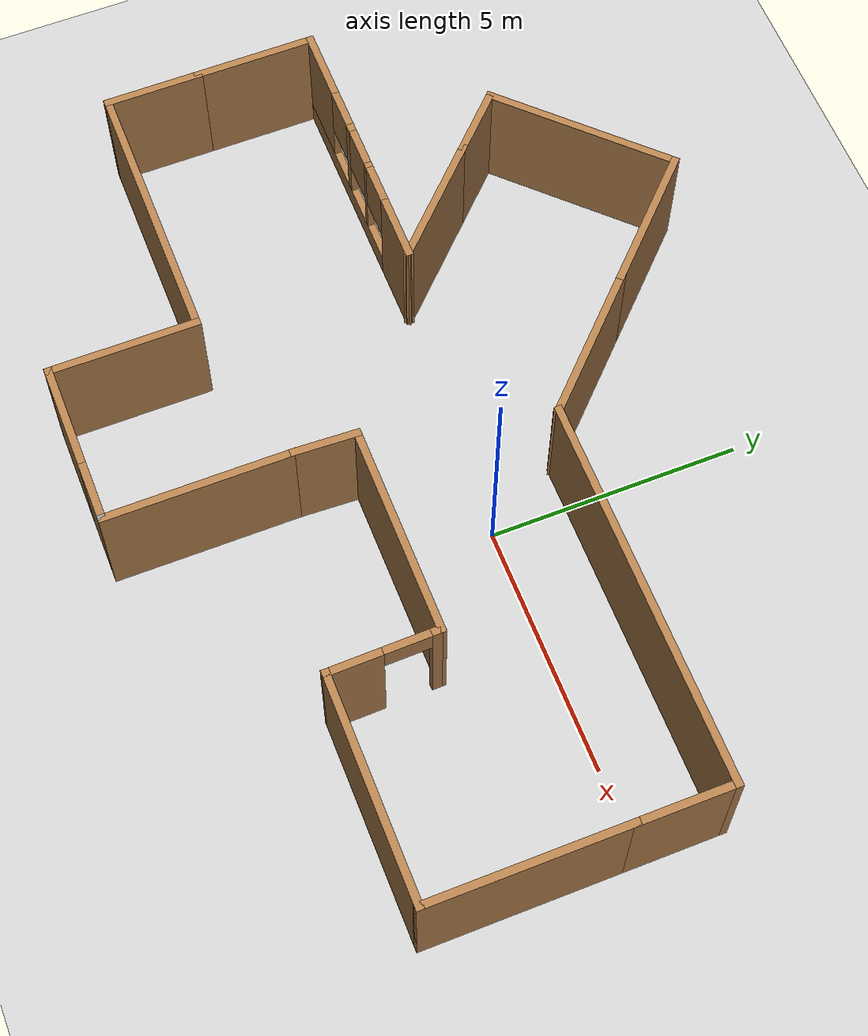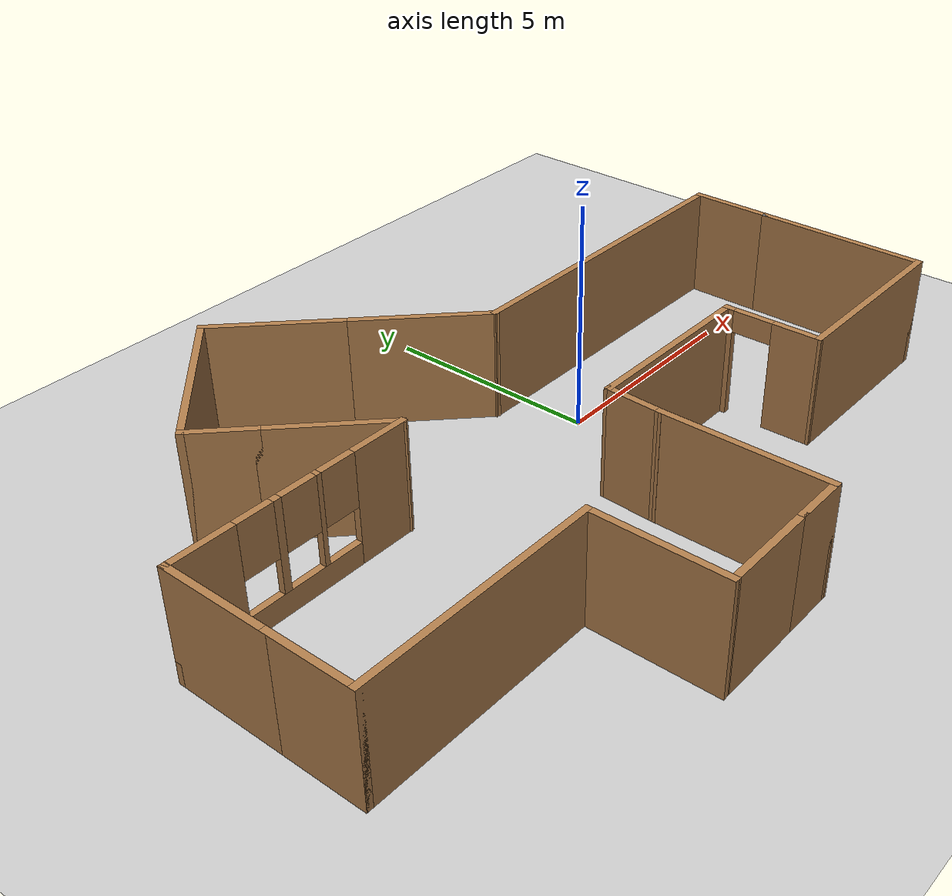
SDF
<?xml version="1.0" ?>
<sdf version="1.5">
  <world name="default">
    <!-- A global light source -->
    <include>
      <uri>model://sun</uri>
    </include>
    <!-- A ground plane -->
    <include>
      <uri>model://ground_plane</uri>
    </include>
    <include>
      <uri>model://home</uri>
    </include>
  </world>
</sdf>

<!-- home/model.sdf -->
<sdf version='1.7'>
  <model name='home'>
    <pose>-1.7677 -0.495482 0 0 -0 0</pose>
    <link name='Wall_10'>
      <collision name='Wall_10_Collision'>
        <geometry>
          <box>
            <size>7.75 0.15 2.5</size>
          </box>
        </geometry>
        <pose>0 0 1.25 0 -0 0</pose>
      </collision>
      <visual name='Wall_10_Visual'>
        <pose>0 0 1.25 0 -0 0</pose>
        <geometry>
          <box>
            <size>7.75 0.15 2.5</size>
          </box>
        </geometry>
        <material>
          <script>
            <uri>file://media/materials/scripts/gazebo.material</uri>
            <name>Gazebo/Wood</name>
          </script>
          <ambient>1 1 1 1</ambient>
        </material>
        <meta>
          <layer>0</layer>
        </meta>
      </visual>
      <pose>4.74329 2.0599 0 0 -0 3.14159</pose>
    </link>
    <link name='Wall_14'>
      <collision name='Wall_14_Collision'>
        <geometry>
          <box>
            <size>3.25 0.15 2.5</size>
          </box>
        </geometry>
        <pose>0 0 1.25 0 -0 0</pose>
      </collision>
      <visual name='Wall_14_Visual'>
        <pose>0 0 1.25 0 -0 0</pose>
        <geometry>
          <box>
            <size>3.25 0.15 2.5</size>
          </box>
        </geometry>
        <material>
          <script>
            <uri>file://media/materials/scripts/gazebo.material</uri>
            <name>Gazebo/Wood</name>
          </script>
          <ambient>1 1 1 1</ambient>
        </material>
        <meta>
          <layer>0</layer>
        </meta>
      </visual>
      <pose>-0.152728 3.15591 0 0 -0 2.35619</pose>
    </link>
    <link name='Wall_17'>
      <collision name='Wall_17_Collision'>
        <geometry>
          <box>
            <size>3 0.15 2.5</size>
          </box>
        </geometry>
        <pose>0 0 1.25 0 -0 0</pose>
      </collision>
      <visual name='Wall_17_Visual'>
        <pose>0 0 1.25 0 -0 0</pose>
        <geometry>
          <box>
            <size>3 0.15 2.5</size>
          </box>
        </geometry>
        <material>
          <script>
            <uri>file://media/materials/scripts/gazebo.material</uri>
            <name>Gazebo/Wood</name>
          </script>
          <ambient>1 1 1 1</ambient>
        </material>
        <meta>
          <layer>0</layer>
        </meta>
      </visual>
      <pose>-2.25637 5.25956 0 0 -0 2.35619</pose>
    </link>
    <link name='Wall_19'>
      <collision name='Wall_19_Collision'>
        <geometry>
          <box>
            <size>4 0.15 2.5</size>
          </box>
        </geometry>
        <pose>0 0 1.25 0 -0 0</pose>
      </collision>
      <visual name='Wall_19_Visual'>
        <pose>0 0 1.25 0 -0 0</pose>
        <geometry>
          <box>
            <size>4 0.15 2.5</size>
          </box>
        </geometry>
        <material>
          <script>
            <uri>file://media/materials/scripts/gazebo.material</uri>
            <name>Gazebo/Wood</name>
          </script>
          <ambient>1 1 1 1</ambient>
        </material>
        <meta>
          <layer>0</layer>
        </meta>
      </visual>
      <pose>-4.62518 4.906 0 0 -0 -2.35619</pose>
    </link>
    <link name='Wall_20'>
      <collision name='Wall_20_Collision'>
        <geometry>
          <box>
            <size>1.5 0.15 2.5</size>
          </box>
        </geometry>
        <pose>0 0 1.25 0 -0 0</pose>
      </collision>
      <visual name='Wall_20_Visual'>
        <pose>0 0 1.25 0 -0 0</pose>
        <geometry>
          <box>
            <size>1.5 0.15 2.5</size>
          </box>
        </geometry>
        <material>
          <script>
            <uri>file://media/materials/scripts/gazebo.material</uri>
            <name>Gazebo/Wood</name>
          </script>
          <ambient>1 1 1 1</ambient>
        </material>
        <meta>
          <layer>0</layer>
        </meta>
      </visual>
      <pose>-5.50906 3.06752 0 0 -0 -0.785398</pose>
    </link>
    <link name='Wall_22'>
      <collision name='Wall_22_Collision'>
        <geometry>
          <box>
            <size>2.75 0.15 2.5</size>
          </box>
        </geometry>
        <pose>0 0 1.25 0 -0 0</pose>
      </collision>
      <visual name='Wall_22_Visual'>
        <pose>0 0 1.25 0 -0 0</pose>
        <geometry>
          <box>
            <size>2.75 0.15 2.5</size>
          </box>
        </geometry>
        <material>
          <script>
            <uri>file://media/materials/scripts/gazebo.material</uri>
            <name>Gazebo/Wood</name>
          </script>
          <ambient>1 1 1 1</ambient>
        </material>
        <meta>
          <layer>0</layer>
        </meta>
      </visual>
      <pose>-4.11253 1.67099 0 0 -0 -0.785398</pose>
    </link>
    <link name='Wall_24'>
      <pose>-5.86829 0.75175 0 0 -0 3.14159</pose>
      <visual name='Wall_24_Visual_0'>
        <pose>-2.078 0 1.25 0 -0 0</pose>
        <geometry>
          <box>
            <size>1.34401 0.15 2.5</size>
          </box>
        </geometry>
        <material>
          <script>
            <uri>file://media/materials/scripts/gazebo.material</uri>
            <name>Gazebo/Wood</name>
          </script>
          <ambient>1 1 1 1</ambient>
        </material>
        <meta>
          <layer>0</layer>
        </meta>
      </visual>
      <collision name='Wall_24_Collision_0'>
        <geometry>
          <box>
            <size>1.34401 0.15 2.5</size>
          </box>
        </geometry>
        <pose>-2.078 0 1.25 0 -0 0</pose>
      </collision>
      <visual name='Wall_24_Visual_1'>
        <pose>0.672005 0 0.25 0 -0 0</pose>
        <geometry>
          <box>
            <size>4.15599 0.15 0.5</size>
          </box>
        </geometry>
        <material>
          <script>
            <uri>file://media/materials/scripts/gazebo.material</uri>
            <name>Gazebo/Wood</name>
          </script>
          <ambient>1 1 1 1</ambient>
        </material>
        <meta>
          <layer>0</layer>
        </meta>
      </visual>
      <collision name='Wall_24_Collision_1'>
        <geometry>
          <box>
            <size>4.15599 0.15 0.5</size>
          </box>
        </geometry>
        <pose>0.672005 0 0.25 0 -0 0</pose>
      </collision>
      <visual name='Wall_24_Visual_2'>
        <pose>-0.55099 0 1.5 0 -0 0</pose>
        <geometry>
          <box>
            <size>0.11 0.15 2</size>
          </box>
        </geometry>
        <material>
          <script>
            <uri>file://media/materials/scripts/gazebo.material</uri>
            <name>Gazebo/Wood</name>
          </script>
          <ambient>1 1 1 1</ambient>
        </material>
        <meta>
          <layer>0</layer>
        </meta>
      </visual>
      <collision name='Wall_24_Collision_2'>
        <geometry>
          <box>
            <size>0.11 0.15 2</size>
          </box>
        </geometry>
        <pose>-0.55099 0 1.5 0 -0 0</pose>
      </collision>
      <visual name='Wall_24_Visual_3'>
        <pose>0.38901 0 1.5 0 -0 0</pose>
        <geometry>
          <box>
            <size>0.17 0.15 2</size>
          </box>
        </geometry>
        <material>
          <script>
            <uri>file://media/materials/scripts/gazebo.material</uri>
            <name>Gazebo/Wood</name>
          </script>
          <ambient>1 1 1 1</ambient>
        </material>
        <meta>
          <layer>0</layer>
        </meta>
      </visual>
      <collision name='Wall_24_Collision_3'>
        <geometry>
          <box>
            <size>0.17 0.15 2</size>
          </box>
        </geometry>
        <pose>0.38901 0 1.5 0 -0 0</pose>
      </collision>
      <visual name='Wall_24_Visual_4'>
        <pose>2.012 0 1.5 0 -0 0</pose>
        <geometry>
          <box>
            <size>1.47599 0.15 2</size>
          </box>
        </geometry>
        <material>
          <script>
            <uri>file://media/materials/scripts/gazebo.material</uri>
            <name>Gazebo/Wood</name>
          </script>
          <ambient>1 1 1 1</ambient>
        </material>
        <meta>
          <layer>0</layer>
        </meta>
      </visual>
      <collision name='Wall_24_Collision_4'>
        <geometry>
          <box>
            <size>1.47599 0.15 2</size>
          </box>
        </geometry>
        <pose>2.012 0 1.5 0 -0 0</pose>
      </collision>
      <visual name='Wall_24_Visual_5'>
        <pose>-1.00599 0 1.9 0 -0 0</pose>
        <geometry>
          <box>
            <size>0.8 0.15 1.2</size>
          </box>
        </geometry>
        <material>
          <script>
            <uri>file://media/materials/scripts/gazebo.material</uri>
            <name>Gazebo/Wood</name>
          </script>
          <ambient>1 1 1 1</ambient>
        </material>
        <meta>
          <layer>0</layer>
        </meta>
      </visual>
      <collision name='Wall_24_Collision_5'>
        <geometry>
          <box>
            <size>0.8 0.15 1.2</size>
          </box>
        </geometry>
        <pose>-1.00599 0 1.9 0 -0 0</pose>
      </collision>
      <visual name='Wall_24_Visual_6'>
        <pose>-0.09599 0 1.9 0 -0 0</pose>
        <geometry>
          <box>
            <size>0.8 0.15 1.2</size>
          </box>
        </geometry>
        <material>
          <script>
            <uri>file://media/materials/scripts/gazebo.material</uri>
            <name>Gazebo/Wood</name>
          </script>
          <ambient>1 1 1 1</ambient>
        </material>
        <meta>
          <layer>0</layer>
        </meta>
      </visual>
      <collision name='Wall_24_Collision_6'>
        <geometry>
          <box>
            <size>0.8 0.15 1.2</size>
          </box>
        </geometry>
        <pose>-0.09599 0 1.9 0 -0 0</pose>
      </collision>
      <visual name='Wall_24_Visual_7'>
        <pose>0.87401 0 1.9 0 -0 0</pose>
        <geometry>
          <box>
            <size>0.8 0.15 1.2</size>
          </box>
        </geometry>
        <material>
          <script>
            <uri>file://media/materials/scripts/gazebo.material</uri>
            <name>Gazebo/Wood</name>
          </script>
          <ambient>1 1 1 1</ambient>
        </material>
        <meta>
          <layer>0</layer>
        </meta>
      </visual>
      <collision name='Wall_24_Collision_7'>
        <geometry>
          <box>
            <size>0.8 0.15 1.2</size>
          </box>
        </geometry>
        <pose>0.87401 0 1.9 0 -0 0</pose>
      </collision>
    </link>
    <link name='Wall_25'>
      <collision name='Wall_25_Collision'>
        <geometry>
          <box>
            <size>2.5 0.15 2.5</size>
          </box>
        </geometry>
        <pose>0 0 1.25 0 -0 0</pose>
      </collision>
      <visual name='Wall_25_Visual'>
        <pose>0 0 1.25 0 -0 0</pose>
        <geometry>
          <box>
            <size>2.5 0.15 2.5</size>
          </box>
        </geometry>
        <material>
          <script>
            <uri>file://media/materials/scripts/gazebo.material</uri>
            <name>Gazebo/Wood</name>
          </script>
          <ambient>1 1 1 1</ambient>
        </material>
        <meta>
          <layer>0</layer>
        </meta>
      </visual>
      <pose>-8.54329 -0.423249 0 0 -0 -1.5708</pose>
    </link>
    <link name='Wall_28'>
      <collision name='Wall_28_Collision'>
        <geometry>
          <box>
            <size>2 0.15 2.5</size>
          </box>
        </geometry>
        <pose>0 0 1.25 0 -0 0</pose>
      </collision>
      <visual name='Wall_28_Visual'>
        <pose>0 0 1.25 0 -0 0</pose>
        <geometry>
          <box>
            <size>2 0.15 2.5</size>
          </box>
        </geometry>
        <material>
          <script>
            <uri>file://media/materials/scripts/gazebo.material</uri>
            <name>Gazebo/Wood</name>
          </script>
          <ambient>1 1 1 1</ambient>
        </material>
        <meta>
          <layer>0</layer>
        </meta>
      </visual>
      <pose>-8.54329 -2.52325 0 0 -0 -1.5708</pose>
    </link>
    <link name='Wall_29'>
      <collision name='Wall_29_Collision'>
        <geometry>
          <box>
            <size>5.5 0.15 2.5</size>
          </box>
        </geometry>
        <pose>0 0 1.25 0 -0 0</pose>
      </collision>
      <visual name='Wall_29_Visual'>
        <pose>0 0 1.25 0 -0 0</pose>
        <geometry>
          <box>
            <size>5.5 0.15 2.5</size>
          </box>
        </geometry>
        <material>
          <script>
            <uri>file://media/materials/scripts/gazebo.material</uri>
            <name>Gazebo/Wood</name>
          </script>
          <ambient>1 1 1 1</ambient>
        </material>
        <meta>
          <layer>0</layer>
        </meta>
      </visual>
      <pose>-5.86829 -3.44825 0 0 -0 0</pose>
    </link>
    <link name='Wall_3'>
      <pose>4.17549 -2.57231 0 0 -0 -1.55414</pose>
      <visual name='Wall_3_Visual_0'>
        <pose>-1.01007 0 1.25 0 -0 0</pose>
        <geometry>
          <box>
            <size>0.265744 0.15 2.5</size>
          </box>
        </geometry>
        <material>
          <script>
            <uri>file://media/materials/scripts/gazebo.material</uri>
            <name>Gazebo/Wood</name>
          </script>
          <ambient>1 1 1 1</ambient>
        </material>
        <meta>
          <layer>0</layer>
        </meta>
      </visual>
      <collision name='Wall_3_Collision_0'>
        <geometry>
          <box>
            <size>0.265744 0.15 2.5</size>
          </box>
        </geometry>
        <pose>-1.01007 0 1.25 0 -0 0</pose>
      </collision>
      <visual name='Wall_3_Visual_1'>
        <pose>0.582872 0 1.25 0 -0 0</pose>
        <geometry>
          <box>
            <size>1.12014 0.15 2.5</size>
          </box>
        </geometry>
        <material>
          <script>
            <uri>file://media/materials/scripts/gazebo.material</uri>
            <name>Gazebo/Wood</name>
          </script>
          <ambient>1 1 1 1</ambient>
        </material>
        <meta>
          <layer>0</layer>
        </meta>
      </visual>
      <collision name='Wall_3_Collision_1'>
        <geometry>
          <box>
            <size>1.12014 0.15 2.5</size>
          </box>
        </geometry>
        <pose>0.582872 0 1.25 0 -0 0</pose>
      </collision>
      <visual name='Wall_3_Visual_2'>
        <pose>-0.427196 0 2.25 0 -0 0</pose>
        <geometry>
          <box>
            <size>0.9 0.15 0.5</size>
          </box>
        </geometry>
        <material>
          <script>
            <uri>file://media/materials/scripts/gazebo.material</uri>
            <name>Gazebo/Wood</name>
          </script>
          <ambient>1 1 1 1</ambient>
        </material>
        <meta>
          <layer>0</layer>
        </meta>
      </visual>
      <collision name='Wall_3_Collision_2'>
        <geometry>
          <box>
            <size>0.9 0.15 0.5</size>
          </box>
        </geometry>
        <pose>-0.427196 0 2.25 0 -0 0</pose>
      </collision>
    </link>
    <link name='Wall_31'>
      <collision name='Wall_31_Collision'>
        <geometry>
          <box>
            <size>3 0.15 2.5</size>
          </box>
        </geometry>
        <pose>0 0 1.25 0 -0 0</pose>
      </collision>
      <visual name='Wall_31_Visual'>
        <pose>0 0 1.25 0 -0 0</pose>
        <geometry>
          <box>
            <size>3 0.15 2.5</size>
          </box>
        </geometry>
        <material>
          <script>
            <uri>file://media/materials/scripts/gazebo.material</uri>
            <name>Gazebo/Wood</name>
          </script>
          <ambient>1 1 1 1</ambient>
        </material>
        <meta>
          <layer>0</layer>
        </meta>
      </visual>
      <pose>-3.19329 -4.87325 0 0 -0 -1.5708</pose>
    </link>
    <link name='Wall_32'>
      <collision name='Wall_32_Collision'>
        <geometry>
          <box>
            <size>2.25 0.15 2.5</size>
          </box>
        </geometry>
        <pose>0 0 1.25 0 -0 0</pose>
      </collision>
      <visual name='Wall_32_Visual'>
        <pose>0 0 1.25 0 -0 0</pose>
        <geometry>
          <box>
            <size>2.25 0.15 2.5</size>
          </box>
        </geometry>
        <material>
          <script>
            <uri>file://media/materials/scripts/gazebo.material</uri>
            <name>Gazebo/Wood</name>
          </script>
          <ambient>1 1 1 1</ambient>
        </material>
        <meta>
          <layer>0</layer>
        </meta>
      </visual>
      <pose>-2.14329 -6.29825 0 0 -0 0</pose>
    </link>
    <link name='Wall_4'>
      <collision name='Wall_4_Collision'>
        <geometry>
          <box>
            <size>4.5 0.15 2.5</size>
          </box>
        </geometry>
        <pose>0 0 1.25 0 -0 0</pose>
      </collision>
      <visual name='Wall_4_Visual'>
        <pose>0 0 1.25 0 -0 0</pose>
        <geometry>
          <box>
            <size>4.5 0.15 2.5</size>
          </box>
        </geometry>
        <material>
          <script>
            <uri>file://media/materials/scripts/gazebo.material</uri>
            <name>Gazebo/Wood</name>
          </script>
          <ambient>1 1 1 1</ambient>
        </material>
        <meta>
          <layer>0</layer>
        </meta>
      </visual>
      <pose>6.36829 -3.6401 0 0 -0 0</pose>
    </link>
    <link name='Wall_40'>
      <collision name='Wall_40_Collision'>
        <geometry>
          <box>
            <size>0.15 0.15 2.5</size>
          </box>
        </geometry>
        <pose>0 0 1.25 0 -0 0</pose>
      </collision>
      <visual name='Wall_40_Visual'>
        <pose>0 0 1.25 0 -0 0</pose>
        <geometry>
          <box>
            <size>0.15 0.15 2.5</size>
          </box>
        </geometry>
        <material>
          <script>
            <uri>file://media/materials/scripts/gazebo.material</uri>
            <name>Gazebo/Grey</name>
          </script>
          <ambient>1 1 1 1</ambient>
        </material>
        <meta>
          <layer>0</layer>
        </meta>
      </visual>
      <pose>0.006713 -6.29825 0 0 -0 0</pose>
    </link>
    <link name='Wall_45'>
      <collision name='Wall_45_Collision'>
        <geometry>
          <box>
            <size>1.25 0.15 2.5</size>
          </box>
        </geometry>
        <pose>0 0 1.25 0 -0 0</pose>
      </collision>
      <visual name='Wall_45_Visual'>
        <pose>0 0 1.25 0 -0 0</pose>
        <geometry>
          <box>
            <size>1.25 0.15 2.5</size>
          </box>
        </geometry>
        <material>
          <script>
            <uri>file://media/materials/scripts/gazebo.material</uri>
            <name>Gazebo/Wood</name>
          </script>
          <ambient>1 1 1 1</ambient>
        </material>
        <meta>
          <layer>0</layer>
        </meta>
      </visual>
      <pose>-0.543288 -6.29825 0 0 -0 0</pose>
    </link>
    <link name='Wall_47'>
      <collision name='Wall_47_Collision'>
        <geometry>
          <box>
            <size>3.75 0.15 2.5</size>
          </box>
        </geometry>
        <pose>0 0 1.25 0 -0 0</pose>
      </collision>
      <visual name='Wall_47_Visual'>
        <pose>0 0 1.25 0 -0 0</pose>
        <geometry>
          <box>
            <size>3.75 0.15 2.5</size>
          </box>
        </geometry>
        <material>
          <script>
            <uri>file://media/materials/scripts/gazebo.material</uri>
            <name>Gazebo/Wood</name>
          </script>
          <ambient>1 1 1 1</ambient>
        </material>
        <meta>
          <layer>0</layer>
        </meta>
      </visual>
      <pose>0.006713 -4.49825 0 0 -0 1.5708</pose>
    </link>
    <link name='Wall_49'>
      <collision name='Wall_49_Collision'>
        <geometry>
          <box>
            <size>4.25 0.15 2.5</size>
          </box>
        </geometry>
        <pose>0 0 1.25 0 -0 0</pose>
      </collision>
      <visual name='Wall_49_Visual'>
        <pose>0 0 1.25 0 -0 0</pose>
        <geometry>
          <box>
            <size>4.25 0.15 2.5</size>
          </box>
        </geometry>
        <material>
          <script>
            <uri>file://media/materials/scripts/gazebo.material</uri>
            <name>Gazebo/Wood</name>
          </script>
          <ambient>1 1 1 1</ambient>
        </material>
        <meta>
          <layer>0</layer>
        </meta>
      </visual>
      <pose>2.1077 -1.50452 0 0 -0 3.14159</pose>
    </link>
    <link name='Wall_50'>
      <collision name='Wall_50_Collision'>
        <geometry>
          <box>
            <size>1.34482 0.15 2.5</size>
          </box>
        </geometry>
        <pose>0 0 1.25 0 -0 0</pose>
      </collision>
      <visual name='Wall_50_Visual'>
        <pose>0 0 1.25 0 -0 0</pose>
        <geometry>
          <box>
            <size>1.34482 0.15 2.5</size>
          </box>
        </geometry>
        <material>
          <script>
            <uri>file://media/materials/scripts/gazebo.material</uri>
            <name>Gazebo/Wood</name>
          </script>
          <ambient>1 1 1 1</ambient>
        </material>
        <meta>
          <layer>0</layer>
        </meta>
      </visual>
      <pose>0.032208 -2.10138 0 0 -0 -1.61349</pose>
    </link>
    <link name='Wall_6'>
      <collision name='Wall_6_Collision'>
        <geometry>
          <box>
            <size>4 0.15 2.5</size>
          </box>
        </geometry>
        <pose>0 0 1.25 0 -0 0</pose>
      </collision>
      <visual name='Wall_6_Visual'>
        <pose>0 0 1.25 0 -0 0</pose>
        <geometry>
          <box>
            <size>4 0.15 2.5</size>
          </box>
        </geometry>
        <material>
          <script>
            <uri>file://media/materials/scripts/gazebo.material</uri>
            <name>Gazebo/Wood</name>
          </script>
          <ambient>1 1 1 1</ambient>
        </material>
        <meta>
          <layer>0</layer>
        </meta>
      </visual>
      <pose>8.54329 -1.7151 0 0 -0 1.5708</pose>
    </link>
    <link name='Wall_7'>
      <collision name='Wall_7_Collision'>
        <geometry>
          <box>
            <size>0.15 0.15 2.5</size>
          </box>
        </geometry>
        <pose>0 0 1.25 0 -0 0</pose>
      </collision>
      <visual name='Wall_7_Visual'>
        <pose>0 0 1.25 0 -0 0</pose>
        <geometry>
          <box>
            <size>0.15 0.15 2.5</size>
          </box>
        </geometry>
        <material>
          <script>
            <uri>file://media/materials/scripts/gazebo.material</uri>
            <name>Gazebo/Grey</name>
          </script>
          <ambient>1 1 1 1</ambient>
        </material>
        <meta>
          <layer>0</layer>
        </meta>
      </visual>
      <pose>8.54329 0.209898 0 0 -0 0</pose>
    </link>
    <link name='Wall_9'>
      <collision name='Wall_9_Collision'>
        <geometry>
          <box>
            <size>2 0.15 2.5</size>
          </box>
        </geometry>
        <pose>0 0 1.25 0 -0 0</pose>
      </collision>
      <visual name='Wall_9_Visual'>
        <pose>0 0 1.25 0 -0 0</pose>
        <geometry>
          <box>
            <size>2 0.15 2.5</size>
          </box>
        </geometry>
        <material>
          <script>
            <uri>file://media/materials/scripts/gazebo.material</uri>
            <name>Gazebo/Wood</name>
          </script>
          <ambient>1 1 1 1</ambient>
        </material>
        <meta>
          <layer>0</layer>
        </meta>
      </visual>
      <pose>8.54329 1.1349 0 0 -0 1.5708</pose>
    </link>
    <static>1</static>
  </model>
</sdf>
